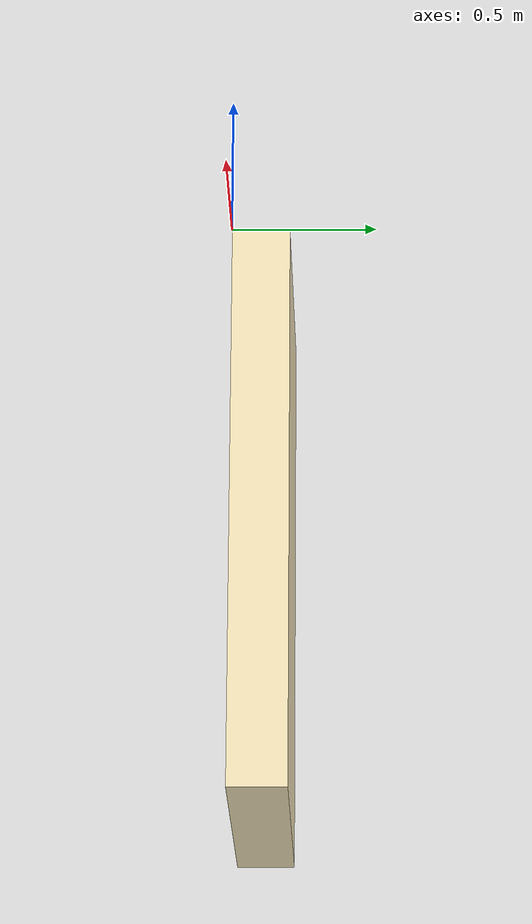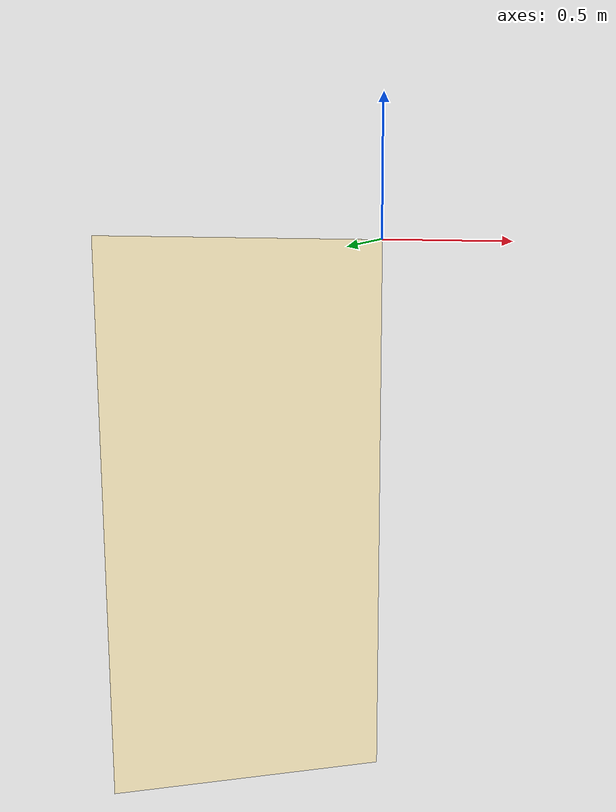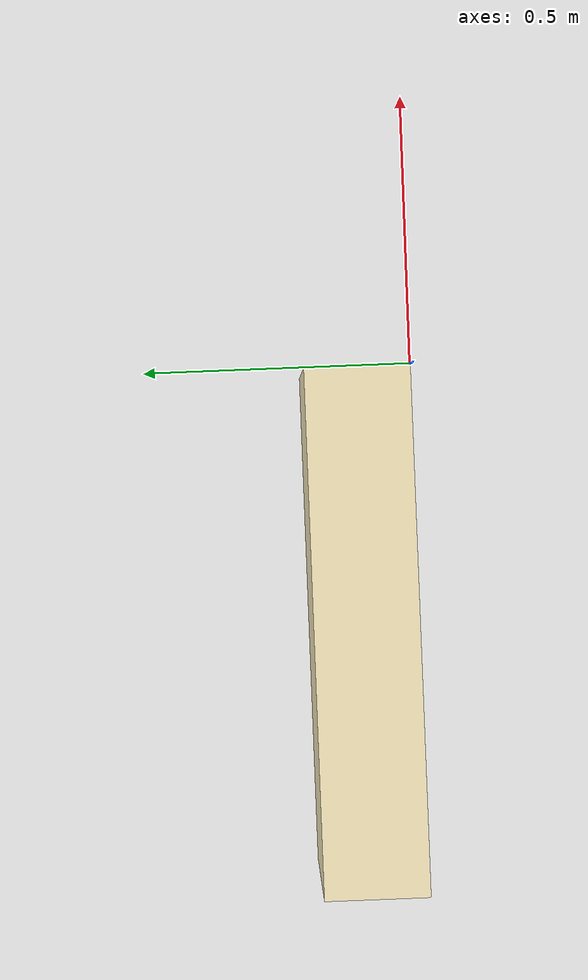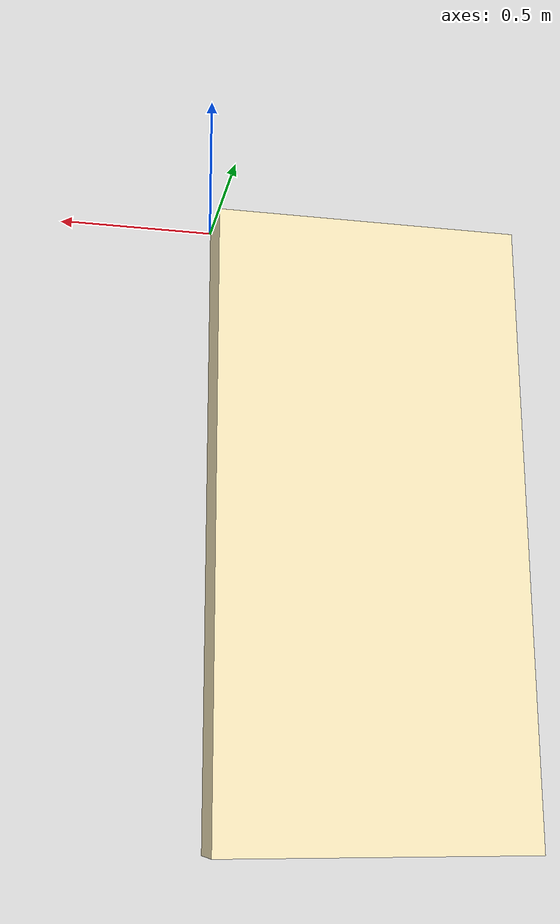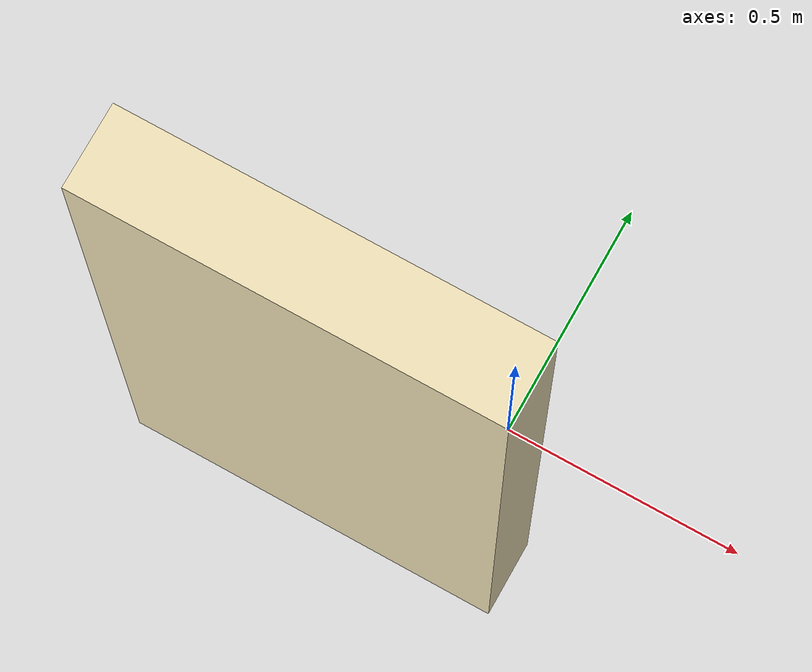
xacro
<?xml version="1.0"?>
<robot name="pallet4" xmlns:xacro="http://www.ros.org/wiki/xacro">

  <link name="pallet4_link">
    <visual>
      <geometry>
        <mesh filename="package://qm_description/meshes/pallets/Pallet20cm.stl" scale="0.001 0.001 0.001"/>
      </geometry>
      <material name="ocher">
          <color rgba="0.949 0.890 0.722 1"/>
      </material>
    </visual>
    <collision>
      <geometry>
        <mesh filename="package://qm_description/meshes/pallets/Pallet20cm.stl" scale="0.001 0.001 0.001"/>
      </geometry>
      <surface>
        <friction>
            <ode>
                <mu>0.7</mu>        <!-- Primary friction coefficient -->
                <mu2>0.7</mu2>      <!-- Secondary friction coefficient -->
            </ode>
        </friction>
      </surface>
    </collision>
    <inertial>
      <mass value="1.0"/>
      <inertia ixx="0.1" ixy="0.0" ixz="0.0" iyy="0.1" iyz="0.0" izz="0.1"/>
    </inertial>
  </link>

  <gazebo reference="pallet4_link">
    <material>Gazebo/WoodPallet</material>
  </gazebo>

  <!-- Wall fixed to the world-->
  <link name="world"/>

  <joint name="base_link_fixed" type="fixed">
    <parent link="world"/>
    <child link="pallet4_link"/>
  </joint>

</robot>
